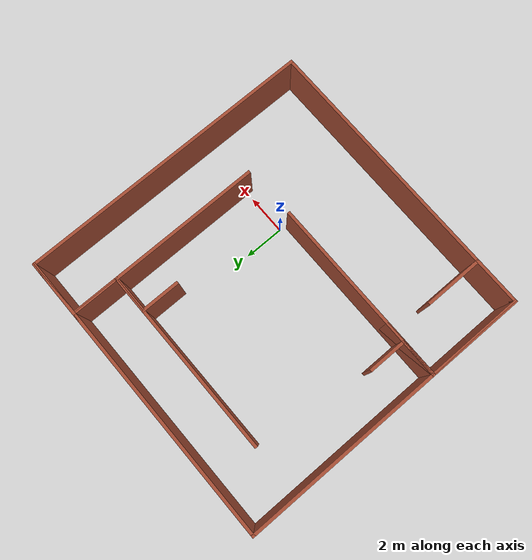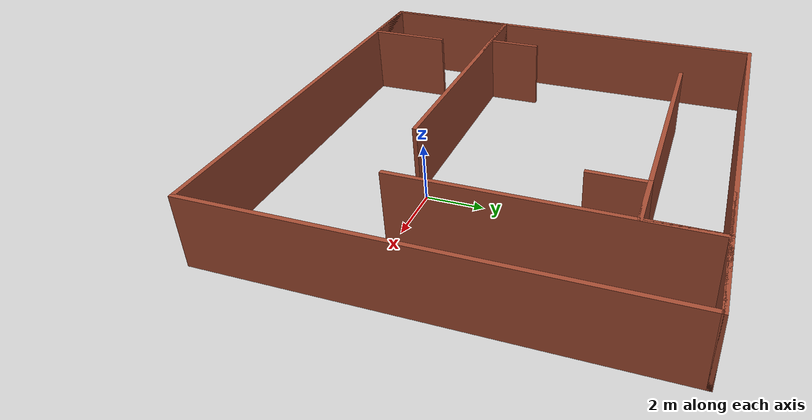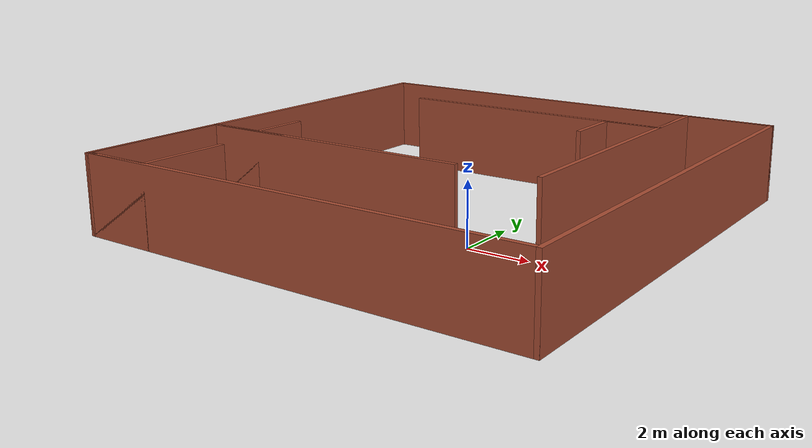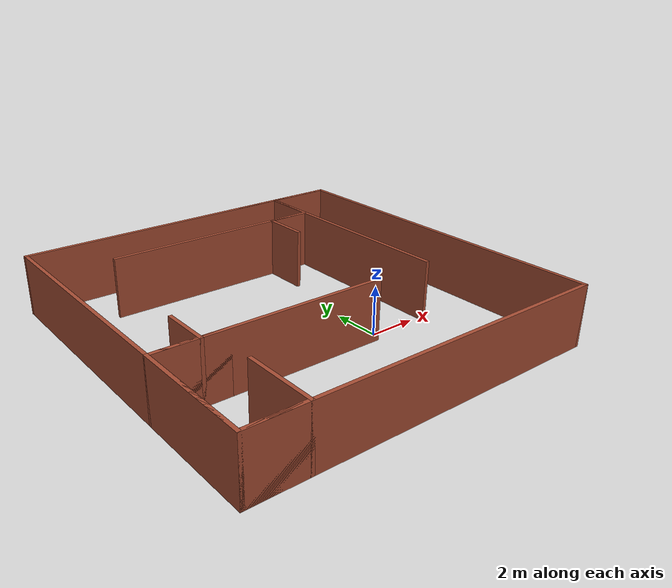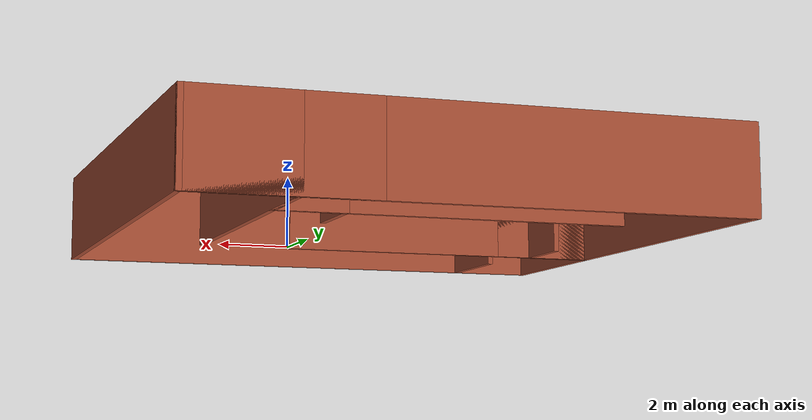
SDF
<?xml version='1.0'?>
<sdf version='1.7'>
  <model name='Kobuki_maze_small'>
    <pose>-2.14529 2.22427 0 0 -0 0</pose>
    <link name='Wall_23'>
      <collision name='Wall_23_Collision'>
        <geometry>
          <box>
            <size>15 0.15 2.5</size>
          </box>
        </geometry>
        <pose>0 0 1.25 0 -0 0</pose>
      </collision>
      <visual name='Wall_23_Visual'>
        <pose>0 0 1.25 0 -0 0</pose>
        <geometry>
          <box>
            <size>15 0.15 2.5</size>
          </box>
        </geometry>
        <material>
          <script>
            <uri>file://media/materials/scripts/gazebo.material</uri>
            <name>Gazebo/Bricks</name>
          </script>
          <ambient>1 1 1 1</ambient>
        </material>
        <meta>
          <layer>0</layer>
        </meta>
      </visual>
      <pose>-7.425 0 0 0 -0 -1.5708</pose>
    </link>
    <link name='Wall_24'>
      <collision name='Wall_24_Collision'>
        <geometry>
          <box>
            <size>15 0.15 2.5</size>
          </box>
        </geometry>
        <pose>0 0 1.25 0 -0 0</pose>
      </collision>
      <visual name='Wall_24_Visual'>
        <pose>0 0 1.25 0 -0 0</pose>
        <geometry>
          <box>
            <size>15 0.15 2.5</size>
          </box>
        </geometry>
        <material>
          <script>
            <uri>file://media/materials/scripts/gazebo.material</uri>
            <name>Gazebo/Bricks</name>
          </script>
          <ambient>1 1 1 1</ambient>
        </material>
        <meta>
          <layer>0</layer>
        </meta>
      </visual>
      <pose>0 -7.425 0 0 -0 0</pose>
    </link>
    <link name='Wall_25'>
      <collision name='Wall_25_Collision'>
        <geometry>
          <box>
            <size>15 0.15 2.5</size>
          </box>
        </geometry>
        <pose>0 0 1.25 0 -0 0</pose>
      </collision>
      <visual name='Wall_25_Visual'>
        <pose>0 0 1.25 0 -0 0</pose>
        <geometry>
          <box>
            <size>15 0.15 2.5</size>
          </box>
        </geometry>
        <material>
          <script>
            <uri>file://media/materials/scripts/gazebo.material</uri>
            <name>Gazebo/Bricks</name>
          </script>
          <ambient>1 1 1 1</ambient>
        </material>
        <meta>
          <layer>0</layer>
        </meta>
      </visual>
      <pose>7.425 0 0 0 -0 1.5708</pose>
    </link>
    <link name='Wall_26'>
      <collision name='Wall_26_Collision'>
        <geometry>
          <box>
            <size>15 0.15 2.5</size>
          </box>
        </geometry>
        <pose>0 0 1.25 0 -0 0</pose>
      </collision>
      <visual name='Wall_26_Visual'>
        <pose>0 0 1.25 0 -0 0</pose>
        <geometry>
          <box>
            <size>15 0.15 2.5</size>
          </box>
        </geometry>
        <material>
          <script>
            <uri>file://media/materials/scripts/gazebo.material</uri>
            <name>Gazebo/Bricks</name>
          </script>
          <ambient>1 1 1 1</ambient>
        </material>
        <meta>
          <layer>0</layer>
        </meta>
      </visual>
      <pose>0 7.425 0 0 -0 3.14159</pose>
    </link>
    <link name='Wall_30'>
      <collision name='Wall_30_Collision'>
        <geometry>
          <box>
            <size>5 0.15 2.5</size>
          </box>
        </geometry>
        <pose>0 0 1.25 0 -0 0</pose>
      </collision>
      <visual name='Wall_30_Visual'>
        <pose>0 0 1.25 0 -0 0</pose>
        <geometry>
          <box>
            <size>5 0.15 2.5</size>
          </box>
        </geometry>
        <material>
          <script>
            <uri>file://media/materials/scripts/gazebo.material</uri>
            <name>Gazebo/Bricks</name>
          </script>
          <ambient>1 1 1 1</ambient>
        </material>
        <meta>
          <layer>0</layer>
        </meta>
      </visual>
      <pose>5 7.425 0 0 -0 3.14159</pose>
    </link>
    <link name='Wall_32'>
      <collision name='Wall_32_Collision'>
        <geometry>
          <box>
            <size>3 0.15 2.5</size>
          </box>
        </geometry>
        <pose>0 0 1.25 0 -0 0</pose>
      </collision>
      <visual name='Wall_32_Visual'>
        <pose>0 0 1.25 0 -0 0</pose>
        <geometry>
          <box>
            <size>3 0.15 2.5</size>
          </box>
        </geometry>
        <material>
          <script>
            <uri>file://media/materials/scripts/gazebo.material</uri>
            <name>Gazebo/Bricks</name>
          </script>
          <ambient>1 1 1 1</ambient>
        </material>
        <meta>
          <layer>0</layer>
        </meta>
      </visual>
      <pose>6 7.425 0 0 -0 3.14159</pose>
    </link>
    <link name='Wall_33'>
      <collision name='Wall_33_Collision'>
        <geometry>
          <box>
            <size>10 0.15 2.5</size>
          </box>
        </geometry>
        <pose>0 0 1.25 0 -0 0</pose>
      </collision>
      <visual name='Wall_33_Visual'>
        <pose>0 0 1.25 0 -0 0</pose>
        <geometry>
          <box>
            <size>10 0.15 2.5</size>
          </box>
        </geometry>
        <material>
          <script>
            <uri>file://media/materials/scripts/gazebo.material</uri>
            <name>Gazebo/Bricks</name>
          </script>
          <ambient>1 1 1 1</ambient>
        </material>
        <meta>
          <layer>0</layer>
        </meta>
      </visual>
      <pose>4.575 2.5 0 0 -0 -1.5708</pose>
    </link>
    <link name='Wall_36'>
      <collision name='Wall_36_Collision'>
        <geometry>
          <box>
            <size>5 0.15 2.5</size>
          </box>
        </geometry>
        <pose>0 0 1.25 0 -0 0</pose>
      </collision>
      <visual name='Wall_36_Visual'>
        <pose>0 0 1.25 0 -0 0</pose>
        <geometry>
          <box>
            <size>5 0.15 2.5</size>
          </box>
        </geometry>
        <material>
          <script>
            <uri>file://media/materials/scripts/gazebo.material</uri>
            <name>Gazebo/Bricks</name>
          </script>
          <ambient>1 1 1 1</ambient>
        </material>
        <meta>
          <layer>0</layer>
        </meta>
      </visual>
      <pose>-7.425 -5 0 0 -0 1.5708</pose>
    </link>
    <link name='Wall_37'>
      <collision name='Wall_37_Collision'>
        <geometry>
          <box>
            <size>9.5 0.15 2.5</size>
          </box>
        </geometry>
        <pose>0 0 1.25 0 -0 0</pose>
      </collision>
      <visual name='Wall_37_Visual'>
        <pose>0 0 1.25 0 -0 0</pose>
        <geometry>
          <box>
            <size>9.5 0.15 2.5</size>
          </box>
        </geometry>
        <material>
          <script>
            <uri>file://media/materials/scripts/gazebo.material</uri>
            <name>Gazebo/Bricks</name>
          </script>
          <ambient>1 1 1 1</ambient>
        </material>
        <meta>
          <layer>0</layer>
        </meta>
      </visual>
      <pose>-2.75 -2.575 0 0 -0 0</pose>
    </link>
    <link name='Wall_39'>
      <collision name='Wall_39_Collision'>
        <geometry>
          <box>
            <size>2.5 0.15 2.5</size>
          </box>
        </geometry>
        <pose>0 0 1.25 0 -0 0</pose>
      </collision>
      <visual name='Wall_39_Visual'>
        <pose>0 0 1.25 0 -0 0</pose>
        <geometry>
          <box>
            <size>2.5 0.15 2.5</size>
          </box>
        </geometry>
        <material>
          <script>
            <uri>file://media/materials/scripts/gazebo.material</uri>
            <name>Gazebo/Bricks</name>
          </script>
          <ambient>1 1 1 1</ambient>
        </material>
        <meta>
          <layer>0</layer>
        </meta>
      </visual>
      <pose>-6.25 -7.425 0 0 -0 0</pose>
    </link>
    <link name='Wall_40'>
      <collision name='Wall_40_Collision'>
        <geometry>
          <box>
            <size>3 0.15 2.5</size>
          </box>
        </geometry>
        <pose>0 0 1.25 0 -0 0</pose>
      </collision>
      <visual name='Wall_40_Visual'>
        <pose>0 0 1.25 0 -0 0</pose>
        <geometry>
          <box>
            <size>3 0.15 2.5</size>
          </box>
        </geometry>
        <material>
          <script>
            <uri>file://media/materials/scripts/gazebo.material</uri>
            <name>Gazebo/Bricks</name>
          </script>
          <ambient>1 1 1 1</ambient>
        </material>
        <meta>
          <layer>0</layer>
        </meta>
      </visual>
      <pose>-5.075 -6 0 0 -0 1.5708</pose>
    </link>
    <link name='Wall_42'>
      <collision name='Wall_42_Collision'>
        <geometry>
          <box>
            <size>2.5 0.15 2.5</size>
          </box>
        </geometry>
        <pose>0 0 1.25 0 -0 0</pose>
      </collision>
      <visual name='Wall_42_Visual'>
        <pose>0 0 1.25 0 -0 0</pose>
        <geometry>
          <box>
            <size>2.5 0.15 2.5</size>
          </box>
        </geometry>
        <material>
          <script>
            <uri>file://media/materials/scripts/gazebo.material</uri>
            <name>Gazebo/Bricks</name>
          </script>
          <ambient>1 1 1 1</ambient>
        </material>
        <meta>
          <layer>0</layer>
        </meta>
      </visual>
      <pose>4.575 6.25 0 0 -0 -1.5708</pose>
    </link>
    <link name='Wall_43'>
      <collision name='Wall_43_Collision'>
        <geometry>
          <box>
            <size>9.5 0.15 2.5</size>
          </box>
        </geometry>
        <pose>0 0 1.25 0 -0 0</pose>
      </collision>
      <visual name='Wall_43_Visual'>
        <pose>0 0 1.25 0 -0 0</pose>
        <geometry>
          <box>
            <size>9.5 0.15 2.5</size>
          </box>
        </geometry>
        <material>
          <script>
            <uri>file://media/materials/scripts/gazebo.material</uri>
            <name>Gazebo/Bricks</name>
          </script>
          <ambient>1 1 1 1</ambient>
        </material>
        <meta>
          <layer>0</layer>
        </meta>
      </visual>
      <pose>-0.1 5.075 0 0 -0 3.14159</pose>
    </link>
    <link name='Wall_45'>
      <collision name='Wall_45_Collision'>
        <geometry>
          <box>
            <size>3 0.15 2.5</size>
          </box>
        </geometry>
        <pose>0 0 1.25 0 -0 0</pose>
      </collision>
      <visual name='Wall_45_Visual'>
        <pose>0 0 1.25 0 -0 0</pose>
        <geometry>
          <box>
            <size>3 0.15 2.5</size>
          </box>
        </geometry>
        <material>
          <script>
            <uri>file://media/materials/scripts/gazebo.material</uri>
            <name>Gazebo/Bricks</name>
          </script>
          <ambient>1 1 1 1</ambient>
        </material>
        <meta>
          <layer>0</layer>
        </meta>
      </visual>
      <pose>-6 -2.575 0 0 -0 0</pose>
    </link>
    <link name='Wall_47'>
      <collision name='Wall_47_Collision'>
        <geometry>
          <box>
            <size>2 0.15 2.5</size>
          </box>
        </geometry>
        <pose>0 0 1.25 0 -0 0</pose>
      </collision>
      <visual name='Wall_47_Visual'>
        <pose>0 0 1.25 0 -0 0</pose>
        <geometry>
          <box>
            <size>2 0.15 2.5</size>
          </box>
        </geometry>
        <material>
          <script>
            <uri>file://media/materials/scripts/gazebo.material</uri>
            <name>Gazebo/Bricks</name>
          </script>
          <ambient>1 1 1 1</ambient>
        </material>
        <meta>
          <layer>0</layer>
        </meta>
      </visual>
      <pose>-6.5 -2.575 0 0 -0 0</pose>
    </link>
    <link name='Wall_48'>
      <collision name='Wall_48_Collision'>
        <geometry>
          <box>
            <size>2 0.15 2.5</size>
          </box>
        </geometry>
        <pose>0 0 1.25 0 -0 0</pose>
      </collision>
      <visual name='Wall_48_Visual'>
        <pose>0 0 1.25 0 -0 0</pose>
        <geometry>
          <box>
            <size>2 0.15 2.5</size>
          </box>
        </geometry>
        <material>
          <script>
            <uri>file://media/materials/scripts/gazebo.material</uri>
            <name>Gazebo/Bricks</name>
          </script>
          <ambient>1 1 1 1</ambient>
        </material>
        <meta>
          <layer>0</layer>
        </meta>
      </visual>
      <pose>-5.575 -1.65 0 0 -0 1.5708</pose>
    </link>
    <link name='Wall_50'>
      <collision name='Wall_50_Collision'>
        <geometry>
          <box>
            <size>2 0.15 2.5</size>
          </box>
        </geometry>
        <pose>0 0 1.25 0 -0 0</pose>
      </collision>
      <visual name='Wall_50_Visual'>
        <pose>0 0 1.25 0 -0 0</pose>
        <geometry>
          <box>
            <size>2 0.15 2.5</size>
          </box>
        </geometry>
        <material>
          <script>
            <uri>file://media/materials/scripts/gazebo.material</uri>
            <name>Gazebo/Bricks</name>
          </script>
          <ambient>1 1 1 1</ambient>
        </material>
        <meta>
          <layer>0</layer>
        </meta>
      </visual>
      <pose>3.65 5.075 0 0 -0 3.14159</pose>
    </link>
    <link name='Wall_51'>
      <collision name='Wall_51_Collision'>
        <geometry>
          <box>
            <size>2 0.15 2.5</size>
          </box>
        </geometry>
        <pose>0 0 1.25 0 -0 0</pose>
      </collision>
      <visual name='Wall_51_Visual'>
        <pose>0 0 1.25 0 -0 0</pose>
        <geometry>
          <box>
            <size>2 0.15 2.5</size>
          </box>
        </geometry>
        <material>
          <script>
            <uri>file://media/materials/scripts/gazebo.material</uri>
            <name>Gazebo/Bricks</name>
          </script>
          <ambient>1 1 1 1</ambient>
        </material>
        <meta>
          <layer>0</layer>
        </meta>
      </visual>
      <pose>2.725 4.15 0 0 -0 -1.5708</pose>
    </link>
    <static>1</static>
  </model>
</sdf>
